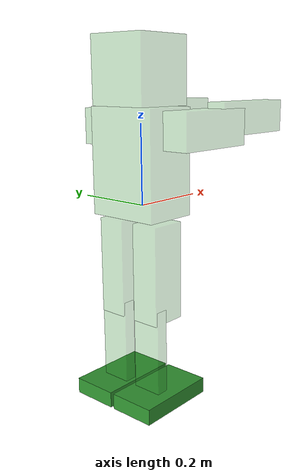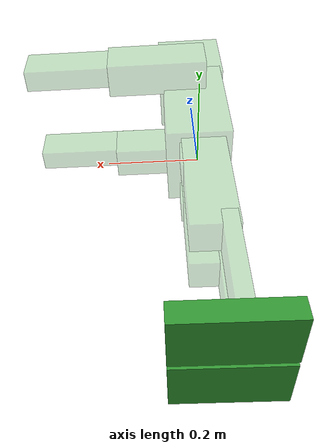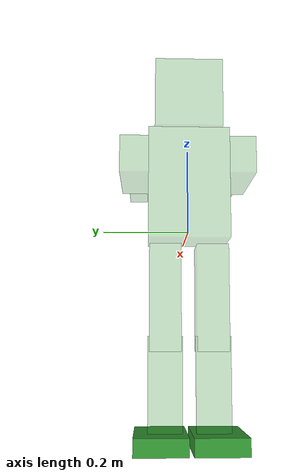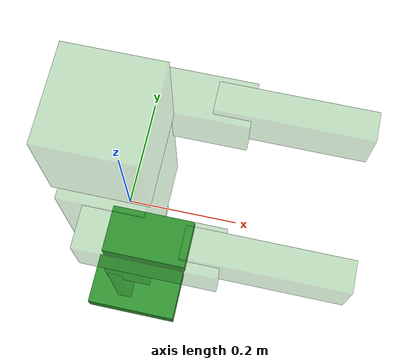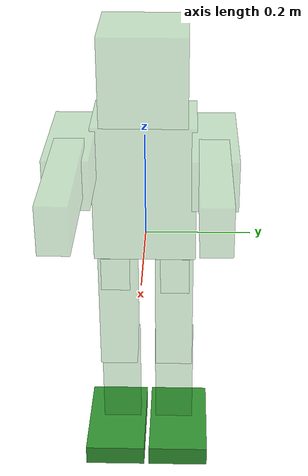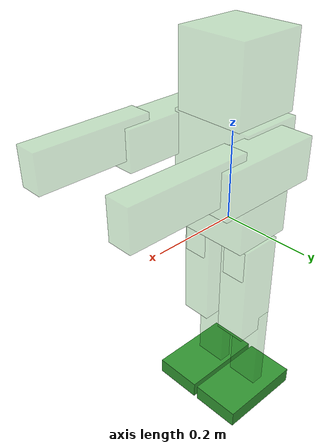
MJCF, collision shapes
<mujoco model="nugus">
<compiler angle="radian" meshdir="assets"/>

  <option iterations="3" ls_iterations="5" timestep=".002">
    <flag eulerdamp="disable"/>
  </option>

  <asset>
    <mesh name="torso_visual" file="torso_visual.stl"/>
    <mesh name="left_hip_yaw_visual" file="left_hip_yaw_visual.stl"/>
    <mesh name="left_hip_roll_visual" file="left_hip_roll_visual.stl"/>
    <mesh name="left_upper_leg_visual" file="left_upper_leg_visual.stl"/>
    <mesh name="left_lower_leg_visual" file="left_lower_leg_visual.stl"/>
    <mesh name="left_ankle_visual" file="left_ankle_visual.stl"/>
    <mesh name="left_foot_visual" file="left_foot_visual.stl"/>
    <mesh name="right_hip_yaw_visual" file="right_hip_yaw_visual.stl"/>
    <mesh name="right_hip_roll_visual" file="right_hip_roll_visual.stl"/>
    <mesh name="right_upper_leg_visual" file="right_upper_leg_visual.stl"/>
    <mesh name="right_lower_leg_visual" file="right_lower_leg_visual.stl"/>
    <mesh name="right_ankle_visual" file="right_ankle_visual.stl"/>
    <mesh name="right_foot_visual" file="right_foot_visual.stl"/>
    <mesh name="right_foot_base_visual" file="right_foot_base_visual.stl"/>
    <mesh name="neck_visual" file="neck_visual.stl"/>
    <mesh name="head_visual" file="head_visual.stl"/>
    <mesh name="right_camera_visual" file="right_camera_visual.stl"/>
    <mesh name="left_shoulder_visual" file="left_shoulder_visual.stl"/>
    <mesh name="left_upper_arm_visual" file="left_upper_arm_visual.stl"/>
    <mesh name="left_lower_arm_visual" file="left_lower_arm_visual.stl"/>
    <mesh name="right_shoulder_visual" file="right_shoulder_visual.stl"/>
    <mesh name="right_upper_arm_visual" file="right_upper_arm_visual.stl"/>
    <mesh name="right_lower_arm_visual" file="right_lower_arm_visual.stl"/>
  </asset>

  <default>
    <!-- Default: no collisions -->
    <geom contype="0" conaffinity="0" condim="1" solref="0.02 1"/>
    <site group="5" type="sphere"/>
    <default class="collision">
      <geom group="3" type="box" contype="0" conaffinity="0" friction="1.0"/>
    </default>
    <default class="foot">
        <geom group="3" mass="0" type="box" contype="1" conaffinity="1" condim="3" friction="1.0"/>
      </default>
    <default class="visual">
      <geom contype="0" conaffinity="0" group="1" rgba="0.286275 0.286275 0.286275 1"/>
    </default>
    <!-- Passive sibling joint that models servo backlash (gear play).
         No armature/friction, tiny damping; bounded ±BACKLASH_VALUE around 0. -->
    <default class="backlash_joint">
      <joint damping="0.001" armature="0.0" frictionloss="0.0" limited="true" range="-0.005 0.005"/>
    </default>
  </default>

  <sensor>
    <framepos objtype="site" objname="imu" name="position"/>
    <gyro site="imu" name="imu_ang_vel"/>
    <velocimeter site="imu" name="imu_lin_vel"/>
    <accelerometer site="imu" name="imu_lin_acc"/>
    <subtreeangmom name="root_angmom" body="torso"/>
    <framezaxis objtype="site" objname="imu" name="upvector"/>
    <framexaxis objtype="site" objname="imu" name="forwardvector"/>
    <framelinvel objtype="site" objname="imu" name="global_linvel"/>
    <frameangvel objtype="site" objname="imu" name="global_angvel"/>
    <framequat objtype="site" objname="imu" name="orientation"/>

    <!-- Feet velocity sensors (global). -->
    <framelinvel objtype="site" objname="left_foot" name="left_foot_global_linvel"/>
    <framelinvel objtype="site" objname="right_foot" name="right_foot_global_linvel"/>

    <!-- Foot force sensors. -->
    <force site="left_foot" name="left_foot_force"/>
    <force site="right_foot" name="right_foot_force"/>

    <!-- Joint position sensors -->
    <jointpos joint="right_shoulder_pitch" name="right_shoulder_pitch_pos"/>
    <jointpos joint="left_shoulder_pitch" name="left_shoulder_pitch_pos"/>
    <jointpos joint="right_shoulder_roll" name="right_shoulder_roll_pos"/>
    <jointpos joint="left_shoulder_roll" name="left_shoulder_roll_pos"/>
    <jointpos joint="right_elbow_pitch" name="right_elbow_pitch_pos"/>
    <jointpos joint="left_elbow_pitch" name="left_elbow_pitch_pos"/>
    <jointpos joint="right_hip_yaw" name="right_hip_yaw_pos"/>
    <jointpos joint="left_hip_yaw" name="left_hip_yaw_pos"/>
    <jointpos joint="right_hip_roll" name="right_hip_roll_pos"/>
    <jointpos joint="left_hip_roll" name="left_hip_roll_pos"/>
    <jointpos joint="right_hip_pitch" name="right_hip_pitch_pos"/>
    <jointpos joint="left_hip_pitch" name="left_hip_pitch_pos"/>
    <jointpos joint="right_knee_pitch" name="right_knee_pitch_pos"/>
    <jointpos joint="left_knee_pitch" name="left_knee_pitch_pos"/>
    <jointpos joint="right_ankle_pitch" name="right_ankle_pitch_pos"/>
    <jointpos joint="left_ankle_pitch" name="left_ankle_pitch_pos"/>
    <jointpos joint="right_ankle_roll" name="right_ankle_roll_pos"/>
    <jointpos joint="left_ankle_roll" name="left_ankle_roll_pos"/>
    <jointpos joint="neck_yaw" name="neck_yaw_pos"/>
    <jointpos joint="head_pitch" name="head_pitch_pos"/>
  </sensor>

  <worldbody>
    <body name="torso">
      <inertial pos="-0.000971341 -7.63301e-05 0.0898493" quat="0.998034 0.00199235 0.0599357 0.0182343" mass="1.83264" diaginertia="0.0156368 0.0131516 0.00578565"/>
      <joint name="torso_free_joint" type="free"/>
      <site name='imu' size='0.01' pos='0 0 0'/>
      <camera name="track" pos="0.805 -1.105 0.2" xyaxes="0.814 0.580 0.000 -0.140 0.196 0.971" mode="trackcom"/>
      <geom type="mesh" contype="0" conaffinity="0" group="1" density="0" rgba="0.286275 0.286275 0.286275 1" mesh="torso_visual"/>
      <geom name="torso_collision" class="collision" size="0.0697546 0.0949914 0.130902" pos="-0.00200103 -1.04979e-05 0.108568" rgba=".2 .6 .2 .3"/>
      <body name="left_hip_yaw" pos="0 0.055 0" quat="1 0 0 0">
        <inertial pos="-0.0021828 -0.00894798 -0.0247563" quat="0.706738 0.705731 0.0325035 -0.0375176" mass="0.0594023" diaginertia="0.00011878 0.000103492 5.24089e-05"/>
        <joint name="left_hip_yaw" pos="0 0 0" axis="0 0 1" limited="true" range="-0.5 0.5"/>
        <joint name="left_hip_yaw_backlash" pos="0 0 0" axis="0 0 1" class="backlash_joint"/>
        <geom type="mesh" contype="0" conaffinity="0" group="1" density="0" rgba="0.286275 0.286275 0.286275 1" mesh="left_hip_yaw_visual"/>
        <geom size="0.05425 0.0470128 0.03675" pos="0 -0.00723724 -0.03675" type="box" rgba="0.286275 0.286275 0.286275 0"/>
        <body name="left_hip_roll" pos="0.0221332 0 -0.0545" quat="0.707105 0 0.707108 0">
          <inertial pos="0.015733 -0.000686158 -0.0217073" quat="0.70707 0.00800622 -0.00800603 0.707053" mass="0.395953" diaginertia="0.000375935 0.000314298 0.000127658"/>
          <joint name="left_hip_roll" pos="0 0 0" axis="0 0 1" limited="true" range="0.0 0.6"/>
          <joint name="left_hip_roll_backlash" pos="0 0 0" axis="0 0 1" class="backlash_joint"/>
          <geom type="mesh" contype="0" conaffinity="0" group="1" density="0" rgba="0.286275 0.286275 0.286275 1" mesh="left_hip_roll_visual"/>
          <geom name="left_hip_collision" class="collision" size="0.0362265 0.02765 0.046925" pos="0.0211382 0.00135 -0.026825" rgba=".2 .6 .2 .3"/>
          <body name="left_upper_leg" pos="0 0 0" quat="0.707105 -0.707108 0 0">
            <inertial pos="0.144296 0.0401097 0.000258488" quat="0.48018 0.474915 0.52246 0.520498" mass="0.313357" diaginertia="0.00167304 0.00160068 0.000213115"/>
            <joint name="left_hip_pitch" pos="0 0 0" axis="0 0 1" limited="true" range="-1.1 0.5"/>
            <joint name="left_hip_pitch_backlash" pos="0 0 0" axis="0 0 1" class="backlash_joint"/>
            <geom type="mesh" contype="0" conaffinity="0" group="1" density="0" rgba="0.286275 0.286275 0.286275 1" mesh="left_upper_leg_visual"/>
            <geom name="left_thigh_collision" class="collision" size="0.123135 0.0467353 0.0365" pos="0.103064 0.0303674 0" rgba=".2 .6 .2 .3"/>
            <body name="left_lower_leg" pos="0.206046 0.0569501 0" quat="1 0 0 0">
              <inertial pos="0.1001 0.00388186 -1.61259e-08" quat="0.500001 0.500001 0.499999 0.499999" mass="0.0893011" diaginertia="0.000408951 0.0003363 9.01254e-05"/>
              <joint name="left_knee_pitch" pos="0 0 0" axis="0 0 1" limited="true" range="-1.1 2.6"/>
              <joint name="left_knee_pitch_backlash" pos="0 0 0" axis="0 0 1" class="backlash_joint"/>
              <geom type="mesh" contype="0" conaffinity="0" group="1" density="0" rgba="0.286275 0.286275 0.286275 1" mesh="left_lower_leg_visual"/>
              <geom name="left_shin_collision" class="collision" size="0.114601 0.0155 0.039" pos="0.100101 0.001 0" rgba=".2 .6 .2 .3"/>
              <body name="left_ankle" pos="0.200203 0 0" quat="1 0 0 0">
                <inertial pos="-0.015733 0.0219762 0.000512596" quat="0.508721 0.491668 -0.491137 0.508184" mass="0.329993" diaginertia="0.000265803 0.000265762 0.000157721"/>
                <joint name="left_ankle_pitch" pos="0 0 0" axis="0 0 1" limited="true" range="-0.6 1.0"/>
                <joint name="left_ankle_pitch_backlash" pos="0 0 0" axis="0 0 1" class="backlash_joint"/>
                <geom type="mesh" contype="0" conaffinity="0" group="1" density="0" rgba="0.286275 0.286275 0.286275 1" mesh="left_ankle_visual"/>
                <geom size="0.0331382 0.047194 0.02765" pos="-0.01805 0.027094 -0.00166756" type="box" rgba="0.286275 0.286275 0.286275 0"/>
                <body name="left_foot" pos="0 0 0" quat="0.707105 0.707108 0 0">
                  <inertial pos="0.0248226 0.00798542 0.033284" quat="0.99979 -0.0089131 -9.26048e-05 -0.0184639" mass="0.245581" diaginertia="0.00134758 0.00108371 0.00033179"/>
                  <joint name="left_ankle_roll" pos="0 0 0" axis="0 0 1" limited="true" range="-0.6 0.6"/>
                  <joint name="left_ankle_roll_backlash" pos="0 0 0" axis="0 0 1" class="backlash_joint"/>
                  <geom type="mesh" contype="0" conaffinity="0" group="1" density="0" rgba="0.286275 0.286275 0.286275 1" mesh="left_foot_visual"/>\
                  <geom name="left_foot_collision" class="foot" pos="0.02 0.01 0.02" size="0.02 0.06 0.105" rgba=".2 .6 .2 .3"/>
                  <site name="left_foot" rgba="1 0 0 1" pos="0.02 0 0"/>
                  <site name="left_foot_c0" rgba="0 1 0 1" pos="0.039 -0.05  0.125"/>
                  <site name="left_foot_c1" rgba="0 1 0 1" pos="0.039 -0.05 -0.085"/>
                  <site name="left_foot_c2" rgba="0 1 0 1" pos="0.039 0.07  0.125"/>
                  <site name="left_foot_c3" rgba="0 1 0 1" pos="0.039 0.07 -0.085"/>
                </body>
              </body>
            </body>
          </body>
        </body>
      </body>
      <body name="right_hip_yaw" pos="0 -0.055 0" quat="1 0 0 0">
        <inertial pos="-0.00218277 0.0089479 -0.0247564" quat="0.705733 0.706736 0.0375273 -0.0325114" mass="0.0594022" diaginertia="0.000118779 0.000103492 5.24082e-05"/>
        <joint name="right_hip_yaw" pos="0 0 0" axis="0 0 1" limited="true" range="-0.5 0.5"/>
        <joint name="right_hip_yaw_backlash" pos="0 0 0" axis="0 0 1" class="backlash_joint"/>
        <geom type="mesh" contype="0" conaffinity="0" group="1" density="0" rgba="0.286275 0.286275 0.286275 1" mesh="right_hip_yaw_visual"/>
        <geom size="0.05425 0.0470128 0.03675" pos="0 0.00723724 -0.03675" type="box" rgba="0.286275 0.286275 0.286275 0"/>
        <body name="right_hip_roll" pos="0.0221332 0 -0.0545" quat="0.707105 0 0.707108 0">
          <inertial pos="0.015733 -0.000232251 -0.0218286" quat="0.707049 0.00279235 -0.00279276 0.707153" mass="0.395953" diaginertia="0.000378041 0.000316367 0.000127621"/>
          <joint name="right_hip_roll" pos="0 0 0" axis="0 0 1" limited="true" range="-0.6 0.0"/>
          <joint name="right_hip_roll_backlash" pos="0 0 0" axis="0 0 1" class="backlash_joint"/>
          <geom type="mesh" contype="0" conaffinity="0" group="1" density="0" rgba="0.286275 0.286275 0.286275 1" mesh="right_hip_roll_visual"/>
          <geom name="right_hip_collision" class="collision" size="0.0331382 0.02765 0.04705" pos="0.01805 -0.00315 -0.02695" rgba=".2 .6 .2 .3"/>
          <body name="right_upper_leg" pos="0 0 0" quat="0.707105 -0.707108 0 0">
            <inertial pos="0.144343 0.0400917 -0.000278506" quat="0.47021 0.473824 0.526501 0.526488" mass="0.313809" diaginertia="0.00167983 0.00160132 0.000207139"/>
            <joint name="right_hip_pitch" pos="0 0 0" axis="0 0 1" limited="true" range="-1.1 0.5"/>
            <joint name="right_hip_pitch_backlash" pos="0 0 0" axis="0 0 1" class="backlash_joint"/>
            <geom type="mesh" contype="0" conaffinity="0" group="1" density="0" rgba="0.286275 0.286275 0.286275 1" mesh="right_upper_leg_visual"/>
            <geom name="right_thigh_collision" class="collision" size="0.123135 0.0467353 0.0365" pos="0.103064 0.0303674 -1.86265e-09" rgba=".2 .6 .2 .3"/>
            <body name="right_lower_leg" pos="0.206046 0.0569501 0" quat="1 0 0 0">
              <inertial pos="0.100103 0.00388186 1.61259e-08" quat="0.499999 0.499999 0.500001 0.500001" mass="0.0893011" diaginertia="0.000408951 0.0003363 9.01254e-05"/>
              <joint name="right_knee_pitch" pos="0 0 0" axis="0 0 1" limited="true" range="-1.1 2.6"/>
              <joint name="right_knee_pitch_backlash" pos="0 0 0" axis="0 0 1" class="backlash_joint"/>
              <geom type="mesh" contype="0" conaffinity="0" group="1" density="0" rgba="0.286275 0.286275 0.286275 1" mesh="right_lower_leg_visual"/>
              <geom name="right_shin_collision" class="collision" size="0.114601 0.0155 0.039" pos="0.100101 0.001 0" rgba=".2 .6 .2 .3"/>
              <body name="right_ankle" pos="0.200203 0 0" quat="1 0 0 0">
                <inertial pos="-0.015733 0.0218226 0.000508968" quat="0.51022 0.492773 -0.489643 0.507051" mass="0.329993" diaginertia="0.00026369 0.000263648 0.000157719"/>
                <joint name="right_ankle_pitch" pos="0 0 0" axis="0 0 1" limited="true" range="-0.6 1.0"/>
                <joint name="right_ankle_pitch_backlash" pos="0 0 0" axis="0 0 1" class="backlash_joint"/>
                <geom type="mesh" contype="0" conaffinity="0" group="1" density="0" rgba="0.286275 0.286275 0.286275 1" mesh="right_ankle_visual"/>
                <geom size="0.0328441 0.047044 0.02765" pos="-0.0177559 0.026944 -0.00166756" type="box" rgba="0.286275 0.286275 0.286275 0"/>
                <body name="right_foot" pos="0 0 0" quat="0.707105 0.707108 0 0">
                  <inertial pos="0.024823 -0.00798676 0.0332808" quat="0.99979 0.0089119 -9.00788e-05 0.0184638" mass="0.245567" diaginertia="0.00134748 0.00108364 0.000331758"/>
                  <joint name="right_ankle_roll" pos="0 0 0" axis="0 0 1" limited="true" range="-0.6 0.6"/>
                  <joint name="right_ankle_roll_backlash" pos="0 0 0" axis="0 0 1" class="backlash_joint"/>
                  <geom type="mesh" contype="0" conaffinity="0" group="1" density="0" rgba="0.286275 0.286275 0.286275 1" mesh="right_foot_visual"/>
                  <geom size="0.0284933 0.0657897 0.107911" pos="0.00950672 -0.0109447 0.0211599" type="box" rgba="0.286275 0.286275 0.286275 0"/>
                  <geom pos="0.038 0 0" quat="0.707105 0 -0.707108 0" type="mesh" contype="0" conaffinity="0" group="1" density="0" rgba="0.615686 0.811765 0.929412 1" mesh="right_foot_base_visual"/>
                  <geom name="right_foot_collision" class="foot" pos="0.02 -0.01 0.02" size="0.02 0.06 0.105" rgba=".2 .6 .2 .3"/>
                  <site name="right_foot" rgba="1 0 0 1" pos="0.02 0 0"/>
                  <site name="right_foot_c0" rgba="0 1 0 1" pos="0.039 0.05 0.125"/>
                  <site name="right_foot_c1" rgba="0 1 0 1" pos="0.039 0.05 -0.085"/>
                  <site name="right_foot_c2" rgba="0 1 0 1" pos="0.039 -0.07 0.125"/>
                  <site name="right_foot_c3" rgba="0 1 0 1" pos="0.039 -0.07 -0.085"/>
                </body>
              </body>
            </body>
          </body>
        </body>
      </body>
      <body name="neck" pos="-0.008 0 0.20825" quat="1.32679e-06 0 0 -1">
        <inertial pos="-0.000244686 -0.000118134 0.0329091" quat="0.998443 0.0557737 1.07166e-07 -1.91845e-06" mass="0.165011" diaginertia="6.78379e-05 5.68579e-05 3.82813e-05"/>
        <joint name="neck_yaw" pos="-0.008 0 0.20825" axis="0 0 1" limited="true" range="-0.5 0.5"/>
        <joint name="neck_yaw_backlash" pos="-0.008 0 0.20825" axis="0 0 1" class="backlash_joint"/>
        <geom type="mesh" contype="0" conaffinity="0" group="1" density="0" rgba="0.286275 0.286275 0.286275 1" mesh="neck_visual"/>
        <geom size="0.0201 0.025 0.0314176" pos="-0.000244711 -0.00275529 0.0306824" type="box" rgba="0.286275 0.286275 0.286275 0"/>
        <body name="head" pos="-0.00024471 -0.000255294 0.0481" quat="0.499998 0.5 0.5 -0.500002">
          <inertial pos="-0.0665563 -0.0103216 -0.000100617" quat="0.999969 -0.000336797 -0.00449046 0.00648687" mass="0.473503" diaginertia="0.00196866 0.00145321 0.00107438"/>
          <joint name="head_pitch" pos="0 0 0" axis="0 0 1" limited="true" range="-0.5 0.5"/>
          <joint name="head_pitch_backlash" pos="0 0 0" axis="0 0 1" class="backlash_joint"/>
          <geom type="mesh" contype="0" conaffinity="0" group="1" density="0" rgba="0.286275 0.286275 0.286275 1" mesh="head_visual"/>
          <geom name="head_collision" class="collision" size="0.0811188 0.0778217 0.0788984" pos="-0.0659288 -0.00433207 -0.000205018" rgba=".2 .6 .2 .3"/>
          <geom pos="-0.0648803 -0.0699522 -0.034205" quat="0.508649 0.508651 -0.491199 -0.491197" type="mesh" contype="0" conaffinity="0" group="1" density="0" rgba="0.615686 0.811765 0.929412 1" mesh="right_camera_visual"/>
          <geom size="5e-06 5.08174e-06 5e-06" pos="-0.0648853 -0.0699524 -0.034205" quat="0.508649 0.508651 -0.491199 -0.491197" type="box" rgba="0.615686 0.811765 0.929412 1"/>
          <camera name="egocentric" pos="0.01425 -0.019 0.04975" fovy="43.3" mode="fixed" euler="0.0 -1.570796 -1.570796"/>
        </body>
      </body>
      <body name="left_shoulder" pos="0 0.077 0.17725" quat="0.499998 -0.5 0.5 0.500002">
        <inertial pos="-3.61374e-05 -0.00254925 0.0287427" quat="0.618495 0.346197 0.615355 0.344891" mass="0.0845502" diaginertia="9.98768e-05 9.09162e-05 7.30289e-05"/>
        <joint name="left_shoulder_pitch" pos="0 0.0106 0.1616" axis="0 0 1" limited="true" range="0.4 2.6"/>
        <joint name="left_shoulder_pitch_backlash" pos="0 0.0106 0.1616" axis="0 0 1" class="backlash_joint"/>
        <geom type="mesh" contype="0" conaffinity="0" group="1" density="0" rgba="0.286275 0.286275 0.286275 1" mesh="left_shoulder_visual"/>
        <geom size="0.04 0.040721 0.0396866" pos="0 -0.000721047 0.0396866" type="box" rgba="0.286275 0.286275 0.286275 0"/>
        <body name="left_upper_arm" pos="0 -0.0100012 0.0479124" quat="0.499998 0.5 -0.500002 -0.5">
          <inertial pos="0.045902 0.000372495 9.27204e-06" quat="0.346504 0.576301 -0.375287 0.637943" mass="0.29923" diaginertia="0.00098868 0.000637586 0.000573833"/>
          <joint name="left_shoulder_roll" pos="0 0 0" axis="0 0 1" limited="true" range="0.1 1.1"/>
          <joint name="left_shoulder_roll_backlash" pos="0 0 0" axis="0 0 1" class="backlash_joint"/>
          <geom type="mesh" contype="0" conaffinity="0" group="1" density="0" rgba="0.286275 0.286275 0.286275 1" mesh="left_upper_arm_visual"/>
          <geom name="left_upper_arm_collision" class="collision" size="0.112419 0.0395114 0.0447976" pos="0.0730323 -1.39214e-05 0.0106963" rgba=".2 .6 .2 .3"/>
          <body name="left_lower_arm" pos="0.1575 -5.57465e-05 0.02695" quat="0.499998 -0.5 0.5 0.500002">
            <inertial pos="-0.000605553 -0.0509966 6.9181e-05" quat="0.568214 0.433479 -0.53189 0.454226" mass="0.287325" diaginertia="0.00115275 0.000789823 0.000530221"/>
            <joint name="left_elbow_pitch" pos="0 0 0" axis="0 0 1" limited="true" range="-2.3 0.0"/>
            <joint name="left_elbow_pitch_backlash" pos="0 0 0" axis="0 0 1" class="backlash_joint"/>
            <geom type="mesh" contype="0" conaffinity="0" group="1" density="0" rgba="0.286275 0.286275 0.286275 1" mesh="left_lower_arm_visual"/>
            <geom name="left_lower_arm_collision" class="collision" size="0.041286 0.129149 0.0254608" pos="-0.00247871 -0.0956493 -0.00252151" rgba=".2 .6 .2 .3"/>
            <site name="left_hand" rgba="1 0 0 1" pos="-0.02 -0.14 0"/>
          </body>
        </body>
      </body>
      <body name="right_shoulder" pos="0 -0.077 0.17725" quat="0.499998 -0.5 0.5 0.500002">
        <inertial pos="-3.46247e-05 -0.00254925 -0.0287427" quat="0.346201 0.618498 0.344878 0.615357" mass="0.0845501" diaginertia="9.98771e-05 9.09162e-05 7.3029e-05"/>
        <joint name="right_shoulder_pitch" pos="0 -0.0106 0.1616" axis="0 0 1" limited="true" range="0.4 2.6"/>
        <joint name="right_shoulder_pitch_backlash" pos="0 -0.0106 0.1616" axis="0 0 1" class="backlash_joint"/>
        <geom type="mesh" contype="0" conaffinity="0" group="1" density="0" rgba="0.286275 0.286275 0.286275 1" mesh="right_shoulder_visual"/>
        <geom size="0.04 0.0407336 0.0396809" pos="0 -0.000733595 -0.0396809" type="box" rgba="0.286275 0.286275 0.286275 0"/>
        <body name="right_upper_arm" pos="0 -0.0100012 -0.0479124" quat="0.499998 0.5 -0.500002 -0.5">
          <inertial pos="0.0458986 -0.000371241 0.000118834" quat="0.327762 0.587042 -0.375964 0.637656" mass="0.299218" diaginertia="0.000988599 0.000640993 0.000570263"/>
          <joint name="right_shoulder_roll" pos="0 0 0" axis="0 0 1" limited="true" range="-1.2 -0.1"/>
          <joint name="right_shoulder_roll_backlash" pos="0 0 0" axis="0 0 1" class="backlash_joint"/>
          <geom type="mesh" contype="0" conaffinity="0" group="1" density="0" rgba="0.286275 0.286275 0.286275 1" mesh="right_upper_arm_visual"/>
          <geom name="right_upper_arm_collision" class="collision" size="0.112415 0.0395114 0.0447976" pos="0.0730282 1.39214e-05 0.0106963" rgba=".2 .6 .2 .3"/>
          <body name="right_lower_arm" pos="0.1575 5.57465e-05 0.02695" quat="0.499998 -0.5 0.5 0.500002">
            <inertial pos="-0.00060488 -0.0510002 -6.85101e-05" quat="0.456626 0.549865 -0.476171 0.512252" mass="0.28735" diaginertia="0.00115298 0.000782489 0.000537795"/>
            <joint name="right_elbow_pitch" pos="0 0 0" axis="0 0 1" limited="true" range="-2.3 0.0"/>
            <joint name="right_elbow_pitch_backlash" pos="0 0 0" axis="0 0 1" class="backlash_joint"/>
            <geom type="mesh" contype="0" conaffinity="0" group="1" density="0" rgba="0.286275 0.286275 0.286275 1" mesh="right_lower_arm_visual"/>
            <geom name="right_lower_arm_collision" class="collision" size="0.041286 0.129159 0.0254784" pos="-0.00247871 -0.0956591 0.0025391" rgba=".2 .6 .2 .3"/>
            <site name="right_hand" rgba="1 0 0 1" pos="-0.02 -0.14 0"/>
          </body>
        </body>
      </body>
    </body>
  </worldbody>

  <contact>
    <!-- Left leg chain (adjacent links) -->
    <exclude body1="torso" body2="left_hip_yaw"/>
    <exclude body1="left_hip_yaw" body2="left_hip_roll"/>
    <exclude body1="left_hip_roll" body2="left_upper_leg"/>
    <exclude body1="left_upper_leg" body2="left_lower_leg"/>
    <exclude body1="left_lower_leg" body2="left_ankle"/>
    <exclude body1="left_ankle" body2="left_foot"/>
    <!-- Left leg chain (near-neighbor links) -->
    <exclude body1="torso" body2="left_hip_roll"/>
    <exclude body1="left_hip_yaw" body2="left_upper_leg"/>
    <exclude body1="left_hip_roll" body2="left_lower_leg"/>
    <exclude body1="left_upper_leg" body2="left_ankle"/>
    <exclude body1="left_lower_leg" body2="left_foot"/>

    <!-- Right leg chain (adjacent links) -->
    <exclude body1="torso" body2="right_hip_yaw"/>
    <exclude body1="right_hip_yaw" body2="right_hip_roll"/>
    <exclude body1="right_hip_roll" body2="right_upper_leg"/>
    <exclude body1="right_upper_leg" body2="right_lower_leg"/>
    <exclude body1="right_lower_leg" body2="right_ankle"/>
    <exclude body1="right_ankle" body2="right_foot"/>
    <!-- Right leg chain (near-neighbor links) -->
    <exclude body1="torso" body2="right_hip_roll"/>
    <exclude body1="right_hip_yaw" body2="right_upper_leg"/>
    <exclude body1="right_hip_roll" body2="right_lower_leg"/>
    <exclude body1="right_upper_leg" body2="right_ankle"/>
    <exclude body1="right_lower_leg" body2="right_foot"/>

    <!-- Arms chain (adjacent links) -->
    <exclude body1="torso" body2="left_shoulder"/>
    <exclude body1="left_shoulder" body2="left_upper_arm"/>
    <exclude body1="left_upper_arm" body2="left_lower_arm"/>
    <exclude body1="torso" body2="right_shoulder"/>
    <exclude body1="right_shoulder" body2="right_upper_arm"/>
    <exclude body1="right_upper_arm" body2="right_lower_arm"/>
    <!-- Arms chain (near-neighbor links) -->
    <exclude body1="torso" body2="left_upper_arm"/>
    <exclude body1="torso" body2="right_upper_arm"/>
    <exclude body1="left_shoulder" body2="left_lower_arm"/>
    <exclude body1="right_shoulder" body2="right_lower_arm"/>

    <!-- Neck/head chain -->
    <exclude body1="torso" body2="neck"/>
    <exclude body1="neck" body2="head"/>
    <exclude body1="torso" body2="head"/>
  </contact>
</mujoco>
